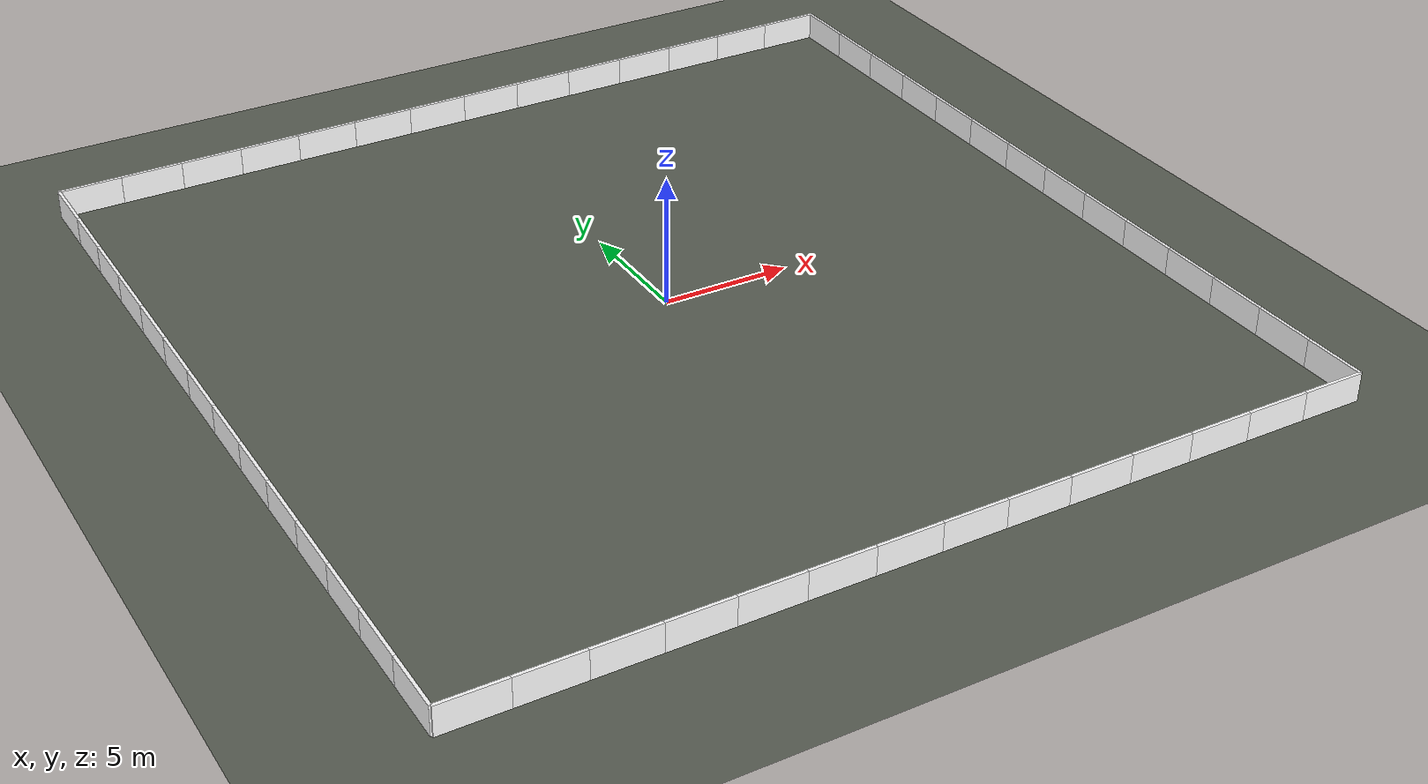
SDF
<sdf version="1.9">
 <world name="park_0">
  <model name="ground_plane">
   <static>true</static>
   <link name="link">
    <collision name="collision">
     <geometry><plane><normal>0 0 1</normal><size>300.000 300.000</size></plane></geometry>
     <surface><friction><ode><mu>1.0</mu><mu2>1.0</mu2></ode></friction></surface>
    </collision>
    <visual name="visual">
     <geometry><plane><normal>0 0 1</normal><size>300.000 300.000</size></plane></geometry>
     <material>
      <ambient>0.350 0.370 0.330 1</ambient>
      <diffuse>0.350 0.370 0.330 1</diffuse>
      <specular>0.08 0.08 0.08 1</specular>
     </material>
    </visual>
   </link>
  </model>
  <model name="fence_3">
   <static>true</static>
   <link name="link">
    <collision name="c0">
     <pose>-15.786 -17.000 0.550 0.0000 0.0000 0.0000</pose>
     <geometry><box><size>2.431 0.120 1.100</size></box></geometry>
    </collision>
    <visual name="v0">
     <pose>-15.786 -17.000 0.550 0.0000 0.0000 0.0000</pose>
     <geometry><box><size>2.431 0.120 1.100</size></box></geometry>
     <material>
      <ambient>1.000 1.000 1.000 1</ambient>
      <diffuse>1.000 1.000 1.000 1</diffuse>
      <specular>0.08 0.08 0.08 1</specular>
      <pbr>
       <metal>
        <albedo_map>model://omnivla_textures/materials/textures/metal.png</albedo_map>
        <roughness>0.85</roughness>
        <metalness>0.0</metalness>
       </metal>
      </pbr>
     </material>
    </visual>
    <collision name="c1">
     <pose>-13.357 -17.000 0.550 0.0000 0.0000 0.0000</pose>
     <geometry><box><size>2.431 0.120 1.100</size></box></geometry>
    </collision>
    <visual name="v1">
     <pose>-13.357 -17.000 0.550 0.0000 0.0000 0.0000</pose>
     <geometry><box><size>2.431 0.120 1.100</size></box></geometry>
     <material>
      <ambient>1.000 1.000 1.000 1</ambient>
      <diffuse>1.000 1.000 1.000 1</diffuse>
      <specular>0.08 0.08 0.08 1</specular>
      <pbr>
       <metal>
        <albedo_map>model://omnivla_textures/materials/textures/metal.png</albedo_map>
        <roughness>0.85</roughness>
        <metalness>0.0</metalness>
       </metal>
      </pbr>
     </material>
    </visual>
    <collision name="c2">
     <pose>-10.929 -17.000 0.550 0.0000 0.0000 0.0000</pose>
     <geometry><box><size>2.431 0.120 1.100</size></box></geometry>
    </collision>
    <visual name="v2">
     <pose>-10.929 -17.000 0.550 0.0000 0.0000 0.0000</pose>
     <geometry><box><size>2.431 0.120 1.100</size></box></geometry>
     <material>
      <ambient>1.000 1.000 1.000 1</ambient>
      <diffuse>1.000 1.000 1.000 1</diffuse>
      <specular>0.08 0.08 0.08 1</specular>
      <pbr>
       <metal>
        <albedo_map>model://omnivla_textures/materials/textures/metal.png</albedo_map>
        <roughness>0.85</roughness>
        <metalness>0.0</metalness>
       </metal>
      </pbr>
     </material>
    </visual>
    <collision name="c3">
     <pose>-8.500 -17.000 0.550 0.0000 0.0000 0.0000</pose>
     <geometry><box><size>2.431 0.120 1.100</size></box></geometry>
    </collision>
    <visual name="v3">
     <pose>-8.500 -17.000 0.550 0.0000 0.0000 0.0000</pose>
     <geometry><box><size>2.431 0.120 1.100</size></box></geometry>
     <material>
      <ambient>1.000 1.000 1.000 1</ambient>
      <diffuse>1.000 1.000 1.000 1</diffuse>
      <specular>0.08 0.08 0.08 1</specular>
      <pbr>
       <metal>
        <albedo_map>model://omnivla_textures/materials/textures/metal.png</albedo_map>
        <roughness>0.85</roughness>
        <metalness>0.0</metalness>
       </metal>
      </pbr>
     </material>
    </visual>
    <collision name="c4">
     <pose>-6.071 -17.000 0.550 0.0000 0.0000 0.0000</pose>
     <geometry><box><size>2.431 0.120 1.100</size></box></geometry>
    </collision>
    <visual name="v4">
     <pose>-6.071 -17.000 0.550 0.0000 0.0000 0.0000</pose>
     <geometry><box><size>2.431 0.120 1.100</size></box></geometry>
     <material>
      <ambient>1.000 1.000 1.000 1</ambient>
      <diffuse>1.000 1.000 1.000 1</diffuse>
      <specular>0.08 0.08 0.08 1</specular>
      <pbr>
       <metal>
        <albedo_map>model://omnivla_textures/materials/textures/metal.png</albedo_map>
        <roughness>0.85</roughness>
        <metalness>0.0</metalness>
       </metal>
      </pbr>
     </material>
    </visual>
    <collision name="c5">
     <pose>-3.643 -17.000 0.550 0.0000 0.0000 0.0000</pose>
     <geometry><box><size>2.431 0.120 1.100</size></box></geometry>
    </collision>
    <visual name="v5">
     <pose>-3.643 -17.000 0.550 0.0000 0.0000 0.0000</pose>
     <geometry><box><size>2.431 0.120 1.100</size></box></geometry>
     <material>
      <ambient>1.000 1.000 1.000 1</ambient>
      <diffuse>1.000 1.000 1.000 1</diffuse>
      <specular>0.08 0.08 0.08 1</specular>
      <pbr>
       <metal>
        <albedo_map>model://omnivla_textures/materials/textures/metal.png</albedo_map>
        <roughness>0.85</roughness>
        <metalness>0.0</metalness>
       </metal>
      </pbr>
     </material>
    </visual>
    <collision name="c6">
     <pose>-1.214 -17.000 0.550 0.0000 0.0000 0.0000</pose>
     <geometry><box><size>2.431 0.120 1.100</size></box></geometry>
    </collision>
    <visual name="v6">
     <pose>-1.214 -17.000 0.550 0.0000 0.0000 0.0000</pose>
     <geometry><box><size>2.431 0.120 1.100</size></box></geometry>
     <material>
      <ambient>1.000 1.000 1.000 1</ambient>
      <diffuse>1.000 1.000 1.000 1</diffuse>
      <specular>0.08 0.08 0.08 1</specular>
      <pbr>
       <metal>
        <albedo_map>model://omnivla_textures/materials/textures/metal.png</albedo_map>
        <roughness>0.85</roughness>
        <metalness>0.0</metalness>
       </metal>
      </pbr>
     </material>
    </visual>
    <collision name="c7">
     <pose>1.214 -17.000 0.550 0.0000 0.0000 0.0000</pose>
     <geometry><box><size>2.431 0.120 1.100</size></box></geometry>
    </collision>
    <visual name="v7">
     <pose>1.214 -17.000 0.550 0.0000 0.0000 0.0000</pose>
     <geometry><box><size>2.431 0.120 1.100</size></box></geometry>
     <material>
      <ambient>1.000 1.000 1.000 1</ambient>
      <diffuse>1.000 1.000 1.000 1</diffuse>
      <specular>0.08 0.08 0.08 1</specular>
      <pbr>
       <metal>
        <albedo_map>model://omnivla_textures/materials/textures/metal.png</albedo_map>
        <roughness>0.85</roughness>
        <metalness>0.0</metalness>
       </metal>
      </pbr>
     </material>
    </visual>
    <collision name="c8">
     <pose>3.643 -17.000 0.550 0.0000 0.0000 0.0000</pose>
     <geometry><box><size>2.431 0.120 1.100</size></box></geometry>
    </collision>
    <visual name="v8">
     <pose>3.643 -17.000 0.550 0.0000 0.0000 0.0000</pose>
     <geometry><box><size>2.431 0.120 1.100</size></box></geometry>
     <material>
      <ambient>1.000 1.000 1.000 1</ambient>
      <diffuse>1.000 1.000 1.000 1</diffuse>
      <specular>0.08 0.08 0.08 1</specular>
      <pbr>
       <metal>
        <albedo_map>model://omnivla_textures/materials/textures/metal.png</albedo_map>
        <roughness>0.85</roughness>
        <metalness>0.0</metalness>
       </metal>
      </pbr>
     </material>
    </visual>
    <collision name="c9">
     <pose>6.071 -17.000 0.550 0.0000 0.0000 0.0000</pose>
     <geometry><box><size>2.431 0.120 1.100</size></box></geometry>
    </collision>
    <visual name="v9">
     <pose>6.071 -17.000 0.550 0.0000 0.0000 0.0000</pose>
     <geometry><box><size>2.431 0.120 1.100</size></box></geometry>
     <material>
      <ambient>1.000 1.000 1.000 1</ambient>
      <diffuse>1.000 1.000 1.000 1</diffuse>
      <specular>0.08 0.08 0.08 1</specular>
      <pbr>
       <metal>
        <albedo_map>model://omnivla_textures/materials/textures/metal.png</albedo_map>
        <roughness>0.85</roughness>
        <metalness>0.0</metalness>
       </metal>
      </pbr>
     </material>
    </visual>
    <collision name="c10">
     <pose>8.500 -17.000 0.550 0.0000 0.0000 0.0000</pose>
     <geometry><box><size>2.431 0.120 1.100</size></box></geometry>
    </collision>
    <visual name="v10">
     <pose>8.500 -17.000 0.550 0.0000 0.0000 0.0000</pose>
     <geometry><box><size>2.431 0.120 1.100</size></box></geometry>
     <material>
      <ambient>1.000 1.000 1.000 1</ambient>
      <diffuse>1.000 1.000 1.000 1</diffuse>
      <specular>0.08 0.08 0.08 1</specular>
      <pbr>
       <metal>
        <albedo_map>model://omnivla_textures/materials/textures/metal.png</albedo_map>
        <roughness>0.85</roughness>
        <metalness>0.0</metalness>
       </metal>
      </pbr>
     </material>
    </visual>
    <collision name="c11">
     <pose>10.929 -17.000 0.550 0.0000 0.0000 0.0000</pose>
     <geometry><box><size>2.431 0.120 1.100</size></box></geometry>
    </collision>
    <visual name="v11">
     <pose>10.929 -17.000 0.550 0.0000 0.0000 0.0000</pose>
     <geometry><box><size>2.431 0.120 1.100</size></box></geometry>
     <material>
      <ambient>1.000 1.000 1.000 1</ambient>
      <diffuse>1.000 1.000 1.000 1</diffuse>
      <specular>0.08 0.08 0.08 1</specular>
      <pbr>
       <metal>
        <albedo_map>model://omnivla_textures/materials/textures/metal.png</albedo_map>
        <roughness>0.85</roughness>
        <metalness>0.0</metalness>
       </metal>
      </pbr>
     </material>
    </visual>
    <collision name="c12">
     <pose>13.357 -17.000 0.550 0.0000 0.0000 0.0000</pose>
     <geometry><box><size>2.431 0.120 1.100</size></box></geometry>
    </collision>
    <visual name="v12">
     <pose>13.357 -17.000 0.550 0.0000 0.0000 0.0000</pose>
     <geometry><box><size>2.431 0.120 1.100</size></box></geometry>
     <material>
      <ambient>1.000 1.000 1.000 1</ambient>
      <diffuse>1.000 1.000 1.000 1</diffuse>
      <specular>0.08 0.08 0.08 1</specular>
      <pbr>
       <metal>
        <albedo_map>model://omnivla_textures/materials/textures/metal.png</albedo_map>
        <roughness>0.85</roughness>
        <metalness>0.0</metalness>
       </metal>
      </pbr>
     </material>
    </visual>
    <collision name="c13">
     <pose>15.786 -17.000 0.550 0.0000 0.0000 0.0000</pose>
     <geometry><box><size>2.431 0.120 1.100</size></box></geometry>
    </collision>
    <visual name="v13">
     <pose>15.786 -17.000 0.550 0.0000 0.0000 0.0000</pose>
     <geometry><box><size>2.431 0.120 1.100</size></box></geometry>
     <material>
      <ambient>1.000 1.000 1.000 1</ambient>
      <diffuse>1.000 1.000 1.000 1</diffuse>
      <specular>0.08 0.08 0.08 1</specular>
      <pbr>
       <metal>
        <albedo_map>model://omnivla_textures/materials/textures/metal.png</albedo_map>
        <roughness>0.85</roughness>
        <metalness>0.0</metalness>
       </metal>
      </pbr>
     </material>
    </visual>
   </link>
  </model>
  <model name="fence_4">
   <static>true</static>
   <link name="link">
    <collision name="c0">
     <pose>17.000 -15.786 0.550 0.0000 0.0000 1.5708</pose>
     <geometry><box><size>2.431 0.120 1.100</size></box></geometry>
    </collision>
    <visual name="v0">
     <pose>17.000 -15.786 0.550 0.0000 0.0000 1.5708</pose>
     <geometry><box><size>2.431 0.120 1.100</size></box></geometry>
     <material>
      <ambient>1.000 1.000 1.000 1</ambient>
      <diffuse>1.000 1.000 1.000 1</diffuse>
      <specular>0.08 0.08 0.08 1</specular>
      <pbr>
       <metal>
        <albedo_map>model://omnivla_textures/materials/textures/metal.png</albedo_map>
        <roughness>0.85</roughness>
        <metalness>0.0</metalness>
       </metal>
      </pbr>
     </material>
    </visual>
    <collision name="c1">
     <pose>17.000 -13.357 0.550 0.0000 0.0000 1.5708</pose>
     <geometry><box><size>2.431 0.120 1.100</size></box></geometry>
    </collision>
    <visual name="v1">
     <pose>17.000 -13.357 0.550 0.0000 0.0000 1.5708</pose>
     <geometry><box><size>2.431 0.120 1.100</size></box></geometry>
     <material>
      <ambient>1.000 1.000 1.000 1</ambient>
      <diffuse>1.000 1.000 1.000 1</diffuse>
      <specular>0.08 0.08 0.08 1</specular>
      <pbr>
       <metal>
        <albedo_map>model://omnivla_textures/materials/textures/metal.png</albedo_map>
        <roughness>0.85</roughness>
        <metalness>0.0</metalness>
       </metal>
      </pbr>
     </material>
    </visual>
    <collision name="c2">
     <pose>17.000 -10.929 0.550 0.0000 0.0000 1.5708</pose>
     <geometry><box><size>2.431 0.120 1.100</size></box></geometry>
    </collision>
    <visual name="v2">
     <pose>17.000 -10.929 0.550 0.0000 0.0000 1.5708</pose>
     <geometry><box><size>2.431 0.120 1.100</size></box></geometry>
     <material>
      <ambient>1.000 1.000 1.000 1</ambient>
      <diffuse>1.000 1.000 1.000 1</diffuse>
      <specular>0.08 0.08 0.08 1</specular>
      <pbr>
       <metal>
        <albedo_map>model://omnivla_textures/materials/textures/metal.png</albedo_map>
        <roughness>0.85</roughness>
        <metalness>0.0</metalness>
       </metal>
      </pbr>
     </material>
    </visual>
    <collision name="c3">
     <pose>17.000 -8.500 0.550 0.0000 0.0000 1.5708</pose>
     <geometry><box><size>2.431 0.120 1.100</size></box></geometry>
    </collision>
    <visual name="v3">
     <pose>17.000 -8.500 0.550 0.0000 0.0000 1.5708</pose>
     <geometry><box><size>2.431 0.120 1.100</size></box></geometry>
     <material>
      <ambient>1.000 1.000 1.000 1</ambient>
      <diffuse>1.000 1.000 1.000 1</diffuse>
      <specular>0.08 0.08 0.08 1</specular>
      <pbr>
       <metal>
        <albedo_map>model://omnivla_textures/materials/textures/metal.png</albedo_map>
        <roughness>0.85</roughness>
        <metalness>0.0</metalness>
       </metal>
      </pbr>
     </material>
    </visual>
    <collision name="c4">
     <pose>17.000 -6.071 0.550 0.0000 0.0000 1.5708</pose>
     <geometry><box><size>2.431 0.120 1.100</size></box></geometry>
    </collision>
    <visual name="v4">
     <pose>17.000 -6.071 0.550 0.0000 0.0000 1.5708</pose>
     <geometry><box><size>2.431 0.120 1.100</size></box></geometry>
     <material>
      <ambient>1.000 1.000 1.000 1</ambient>
      <diffuse>1.000 1.000 1.000 1</diffuse>
      <specular>0.08 0.08 0.08 1</specular>
      <pbr>
       <metal>
        <albedo_map>model://omnivla_textures/materials/textures/metal.png</albedo_map>
        <roughness>0.85</roughness>
        <metalness>0.0</metalness>
       </metal>
      </pbr>
     </material>
    </visual>
    <collision name="c5">
     <pose>17.000 -3.643 0.550 0.0000 0.0000 1.5708</pose>
     <geometry><box><size>2.431 0.120 1.100</size></box></geometry>
    </collision>
    <visual name="v5">
     <pose>17.000 -3.643 0.550 0.0000 0.0000 1.5708</pose>
     <geometry><box><size>2.431 0.120 1.100</size></box></geometry>
     <material>
      <ambient>1.000 1.000 1.000 1</ambient>
      <diffuse>1.000 1.000 1.000 1</diffuse>
      <specular>0.08 0.08 0.08 1</specular>
      <pbr>
       <metal>
        <albedo_map>model://omnivla_textures/materials/textures/metal.png</albedo_map>
        <roughness>0.85</roughness>
        <metalness>0.0</metalness>
       </metal>
      </pbr>
     </material>
    </visual>
    <collision name="c6">
     <pose>17.000 -1.214 0.550 0.0000 0.0000 1.5708</pose>
     <geometry><box><size>2.431 0.120 1.100</size></box></geometry>
    </collision>
    <visual name="v6">
     <pose>17.000 -1.214 0.550 0.0000 0.0000 1.5708</pose>
     <geometry><box><size>2.431 0.120 1.100</size></box></geometry>
     <material>
      <ambient>1.000 1.000 1.000 1</ambient>
      <diffuse>1.000 1.000 1.000 1</diffuse>
      <specular>0.08 0.08 0.08 1</specular>
      <pbr>
       <metal>
        <albedo_map>model://omnivla_textures/materials/textures/metal.png</albedo_map>
        <roughness>0.85</roughness>
        <metalness>0.0</metalness>
       </metal>
      </pbr>
     </material>
    </visual>
    <collision name="c7">
     <pose>17.000 1.214 0.550 0.0000 0.0000 1.5708</pose>
     <geometry><box><size>2.431 0.120 1.100</size></box></geometry>
    </collision>
    <visual name="v7">
     <pose>17.000 1.214 0.550 0.0000 0.0000 1.5708</pose>
     <geometry><box><size>2.431 0.120 1.100</size></box></geometry>
     <material>
      <ambient>1.000 1.000 1.000 1</ambient>
      <diffuse>1.000 1.000 1.000 1</diffuse>
      <specular>0.08 0.08 0.08 1</specular>
      <pbr>
       <metal>
        <albedo_map>model://omnivla_textures/materials/textures/metal.png</albedo_map>
        <roughness>0.85</roughness>
        <metalness>0.0</metalness>
       </metal>
      </pbr>
     </material>
    </visual>
    <collision name="c8">
     <pose>17.000 3.643 0.550 0.0000 0.0000 1.5708</pose>
     <geometry><box><size>2.431 0.120 1.100</size></box></geometry>
    </collision>
    <visual name="v8">
     <pose>17.000 3.643 0.550 0.0000 0.0000 1.5708</pose>
     <geometry><box><size>2.431 0.120 1.100</size></box></geometry>
     <material>
      <ambient>1.000 1.000 1.000 1</ambient>
      <diffuse>1.000 1.000 1.000 1</diffuse>
      <specular>0.08 0.08 0.08 1</specular>
      <pbr>
       <metal>
        <albedo_map>model://omnivla_textures/materials/textures/metal.png</albedo_map>
        <roughness>0.85</roughness>
        <metalness>0.0</metalness>
       </metal>
      </pbr>
     </material>
    </visual>
    <collision name="c9">
     <pose>17.000 6.071 0.550 0.0000 0.0000 1.5708</pose>
     <geometry><box><size>2.431 0.120 1.100</size></box></geometry>
    </collision>
    <visual name="v9">
     <pose>17.000 6.071 0.550 0.0000 0.0000 1.5708</pose>
     <geometry><box><size>2.431 0.120 1.100</size></box></geometry>
     <material>
      <ambient>1.000 1.000 1.000 1</ambient>
      <diffuse>1.000 1.000 1.000 1</diffuse>
      <specular>0.08 0.08 0.08 1</specular>
      <pbr>
       <metal>
        <albedo_map>model://omnivla_textures/materials/textures/metal.png</albedo_map>
        <roughness>0.85</roughness>
        <metalness>0.0</metalness>
       </metal>
      </pbr>
     </material>
    </visual>
    <collision name="c10">
     <pose>17.000 8.500 0.550 0.0000 0.0000 1.5708</pose>
     <geometry><box><size>2.431 0.120 1.100</size></box></geometry>
    </collision>
    <visual name="v10">
     <pose>17.000 8.500 0.550 0.0000 0.0000 1.5708</pose>
     <geometry><box><size>2.431 0.120 1.100</size></box></geometry>
     <material>
      <ambient>1.000 1.000 1.000 1</ambient>
      <diffuse>1.000 1.000 1.000 1</diffuse>
      <specular>0.08 0.08 0.08 1</specular>
      <pbr>
       <metal>
        <albedo_map>model://omnivla_textures/materials/textures/metal.png</albedo_map>
        <roughness>0.85</roughness>
        <metalness>0.0</metalness>
       </metal>
      </pbr>
     </material>
    </visual>
    <collision name="c11">
     <pose>17.000 10.929 0.550 0.0000 0.0000 1.5708</pose>
     <geometry><box><size>2.431 0.120 1.100</size></box></geometry>
    </collision>
    <visual name="v11">
     <pose>17.000 10.929 0.550 0.0000 0.0000 1.5708</pose>
     <geometry><box><size>2.431 0.120 1.100</size></box></geometry>
     <material>
      <ambient>1.000 1.000 1.000 1</ambient>
      <diffuse>1.000 1.000 1.000 1</diffuse>
      <specular>0.08 0.08 0.08 1</specular>
      <pbr>
       <metal>
        <albedo_map>model://omnivla_textures/materials/textures/metal.png</albedo_map>
        <roughness>0.85</roughness>
        <metalness>0.0</metalness>
       </metal>
      </pbr>
     </material>
    </visual>
    <collision name="c12">
     <pose>17.000 13.357 0.550 0.0000 0.0000 1.5708</pose>
     <geometry><box><size>2.431 0.120 1.100</size></box></geometry>
    </collision>
    <visual name="v12">
     <pose>17.000 13.357 0.550 0.0000 0.0000 1.5708</pose>
     <geometry><box><size>2.431 0.120 1.100</size></box></geometry>
     <material>
      <ambient>1.000 1.000 1.000 1</ambient>
      <diffuse>1.000 1.000 1.000 1</diffuse>
      <specular>0.08 0.08 0.08 1</specular>
      <pbr>
       <metal>
        <albedo_map>model://omnivla_textures/materials/textures/metal.png</albedo_map>
        <roughness>0.85</roughness>
        <metalness>0.0</metalness>
       </metal>
      </pbr>
     </material>
    </visual>
    <collision name="c13">
     <pose>17.000 15.786 0.550 0.0000 0.0000 1.5708</pose>
     <geometry><box><size>2.431 0.120 1.100</size></box></geometry>
    </collision>
    <visual name="v13">
     <pose>17.000 15.786 0.550 0.0000 0.0000 1.5708</pose>
     <geometry><box><size>2.431 0.120 1.100</size></box></geometry>
     <material>
      <ambient>1.000 1.000 1.000 1</ambient>
      <diffuse>1.000 1.000 1.000 1</diffuse>
      <specular>0.08 0.08 0.08 1</specular>
      <pbr>
       <metal>
        <albedo_map>model://omnivla_textures/materials/textures/metal.png</albedo_map>
        <roughness>0.85</roughness>
        <metalness>0.0</metalness>
       </metal>
      </pbr>
     </material>
    </visual>
   </link>
  </model>
  <model name="fence_5">
   <static>true</static>
   <link name="link">
    <collision name="c0">
     <pose>15.786 17.000 0.550 0.0000 0.0000 3.1416</pose>
     <geometry><box><size>2.431 0.120 1.100</size></box></geometry>
    </collision>
    <visual name="v0">
     <pose>15.786 17.000 0.550 0.0000 0.0000 3.1416</pose>
     <geometry><box><size>2.431 0.120 1.100</size></box></geometry>
     <material>
      <ambient>1.000 1.000 1.000 1</ambient>
      <diffuse>1.000 1.000 1.000 1</diffuse>
      <specular>0.08 0.08 0.08 1</specular>
      <pbr>
       <metal>
        <albedo_map>model://omnivla_textures/materials/textures/metal.png</albedo_map>
        <roughness>0.85</roughness>
        <metalness>0.0</metalness>
       </metal>
      </pbr>
     </material>
    </visual>
    <collision name="c1">
     <pose>13.357 17.000 0.550 0.0000 0.0000 3.1416</pose>
     <geometry><box><size>2.431 0.120 1.100</size></box></geometry>
    </collision>
    <visual name="v1">
     <pose>13.357 17.000 0.550 0.0000 0.0000 3.1416</pose>
     <geometry><box><size>2.431 0.120 1.100</size></box></geometry>
     <material>
      <ambient>1.000 1.000 1.000 1</ambient>
      <diffuse>1.000 1.000 1.000 1</diffuse>
      <specular>0.08 0.08 0.08 1</specular>
      <pbr>
       <metal>
        <albedo_map>model://omnivla_textures/materials/textures/metal.png</albedo_map>
        <roughness>0.85</roughness>
        <metalness>0.0</metalness>
       </metal>
      </pbr>
     </material>
    </visual>
    <collision name="c2">
     <pose>10.929 17.000 0.550 0.0000 0.0000 3.1416</pose>
     <geometry><box><size>2.431 0.120 1.100</size></box></geometry>
    </collision>
    <visual name="v2">
     <pose>10.929 17.000 0.550 0.0000 0.0000 3.1416</pose>
     <geometry><box><size>2.431 0.120 1.100</size></box></geometry>
     <material>
      <ambient>1.000 1.000 1.000 1</ambient>
      <diffuse>1.000 1.000 1.000 1</diffuse>
      <specular>0.08 0.08 0.08 1</specular>
      <pbr>
       <metal>
        <albedo_map>model://omnivla_textures/materials/textures/metal.png</albedo_map>
        <roughness>0.85</roughness>
        <metalness>0.0</metalness>
       </metal>
      </pbr>
     </material>
    </visual>
    <collision name="c3">
     <pose>8.500 17.000 0.550 0.0000 0.0000 3.1416</pose>
     <geometry><box><size>2.431 0.120 1.100</size></box></geometry>
    </collision>
    <visual name="v3">
     <pose>8.500 17.000 0.550 0.0000 0.0000 3.1416</pose>
     <geometry><box><size>2.431 0.120 1.100</size></box></geometry>
     <material>
      <ambient>1.000 1.000 1.000 1</ambient>
      <diffuse>1.000 1.000 1.000 1</diffuse>
      <specular>0.08 0.08 0.08 1</specular>
      <pbr>
       <metal>
        <albedo_map>model://omnivla_textures/materials/textures/metal.png</albedo_map>
        <roughness>0.85</roughness>
        <metalness>0.0</metalness>
       </metal>
      </pbr>
     </material>
    </visual>
    <collision name="c4">
     <pose>6.071 17.000 0.550 0.0000 0.0000 3.1416</pose>
     <geometry><box><size>2.431 0.120 1.100</size></box></geometry>
    </collision>
    <visual name="v4">
     <pose>6.071 17.000 0.550 0.0000 0.0000 3.1416</pose>
     <geometry><box><size>2.431 0.120 1.100</size></box></geometry>
     <material>
      <ambient>1.000 1.000 1.000 1</ambient>
      <diffuse>1.000 1.000 1.000 1</diffuse>
      <specular>0.08 0.08 0.08 1</specular>
      <pbr>
       <metal>
        <albedo_map>model://omnivla_textures/materials/textures/metal.png</albedo_map>
        <roughness>0.85</roughness>
        <metalness>0.0</metalness>
       </metal>
      </pbr>
     </material>
    </visual>
    <collision name="c5">
     <pose>3.643 17.000 0.550 0.0000 0.0000 3.1416</pose>
     <geometry><box><size>2.431 0.120 1.100</size></box></geometry>
    </collision>
    <visual name="v5">
     <pose>3.643 17.000 0.550 0.0000 0.0000 3.1416</pose>
     <geometry><box><size>2.431 0.120 1.100</size></box></geometry>
     <material>
      <ambient>1.000 1.000 1.000 1</ambient>
      <diffuse>1.000 1.000 1.000 1</diffuse>
      <specular>0.08 0.08 0.08 1</specular>
      <pbr>
       <metal>
        <albedo_map>model://omnivla_textures/materials/textures/metal.png</albedo_map>
        <roughness>0.85</roughness>
        <metalness>0.0</metalness>
       </metal>
      </pbr>
     </material>
    </visual>
    <collision name="c6">
     <pose>1.214 17.000 0.550 0.0000 0.0000 3.1416</pose>
     <geometry><box><size>2.431 0.120 1.100</size></box></geometry>
    </collision>
    <visual name="v6">
     <pose>1.214 17.000 0.550 0.0000 0.0000 3.1416</pose>
     <geometry><box><size>2.431 0.120 1.100</size></box></geometry>
     <material>
      <ambient>1.000 1.000 1.000 1</ambient>
      <diffuse>1.000 1.000 1.000 1</diffuse>
      <specular>0.08 0.08 0.08 1</specular>
      <pbr>
       <metal>
        <albedo_map>model://omnivla_textures/materials/textures/metal.png</albedo_map>
        <roughness>0.85</roughness>
        <metalness>0.0</metalness>
       </metal>
      </pbr>
     </material>
    </visual>
    <collision name="c7">
     <pose>-1.214 17.000 0.550 0.0000 0.0000 3.1416</pose>
     <geometry><box><size>2.431 0.120 1.100</size></box></geometry>
    </collision>
    <visual name="v7">
     <pose>-1.214 17.000 0.550 0.0000 0.0000 3.1416</pose>
     <geometry><box><size>2.431 0.120 1.100</size></box></geometry>
     <material>
      <ambient>1.000 1.000 1.000 1</ambient>
      <diffuse>1.000 1.000 1.000 1</diffuse>
      <specular>0.08 0.08 0.08 1</specular>
      <pbr>
       <metal>
        <albedo_map>model://omnivla_textures/materials/textures/metal.png</albedo_map>
        <roughness>0.85</roughness>
        <metalness>0.0</metalness>
       </metal>
      </pbr>
     </material>
    </visual>
    <collision name="c8">
     <pose>-3.643 17.000 0.550 0.0000 0.0000 3.1416</pose>
     <geometry><box><size>2.431 0.120 1.100</size></box></geometry>
    </collision>
    <visual name="v8">
     <pose>-3.643 17.000 0.550 0.0000 0.0000 3.1416</pose>
     <geometry><box><size>2.431 0.120 1.100</size></box></geometry>
     <material>
      <ambient>1.000 1.000 1.000 1</ambient>
      <diffuse>1.000 1.000 1.000 1</diffuse>
      <specular>0.08 0.08 0.08 1</specular>
      <pbr>
       <metal>
        <albedo_map>model://omnivla_textures/materials/textures/metal.png</albedo_map>
        <roughness>0.85</roughness>
        <metalness>0.0</metalness>
       </metal>
      </pbr>
     </material>
    </visual>
    <collision name="c9">
     <pose>-6.071 17.000 0.550 0.0000 0.0000 3.1416</pose>
     <geometry><box><size>2.431 0.120 1.100</size></box></geometry>
    </collision>
    <visual name="v9">
     <pose>-6.071 17.000 0.550 0.0000 0.0000 3.1416</pose>
     <geometry><box><size>2.431 0.120 1.100</size></box></geometry>
     <material>
      <ambient>1.000 1.000 1.000 1</ambient>
      <diffuse>1.000 1.000 1.000 1</diffuse>
      <specular>0.08 0.08 0.08 1</specular>
      <pbr>
       <metal>
        <albedo_map>model://omnivla_textures/materials/textures/metal.png</albedo_map>
        <roughness>0.85</roughness>
        <metalness>0.0</metalness>
       </metal>
      </pbr>
     </material>
    </visual>
    <collision name="c10">
     <pose>-8.500 17.000 0.550 0.0000 0.0000 3.1416</pose>
     <geometry><box><size>2.431 0.120 1.100</size></box></geometry>
    </collision>
    <visual name="v10">
     <pose>-8.500 17.000 0.550 0.0000 0.0000 3.1416</pose>
     <geometry><box><size>2.431 0.120 1.100</size></box></geometry>
     <material>
      <ambient>1.000 1.000 1.000 1</ambient>
      <diffuse>1.000 1.000 1.000 1</diffuse>
      <specular>0.08 0.08 0.08 1</specular>
      <pbr>
       <metal>
        <albedo_map>model://omnivla_textures/materials/textures/metal.png</albedo_map>
        <roughness>0.85</roughness>
        <metalness>0.0</metalness>
       </metal>
      </pbr>
     </material>
    </visual>
    <collision name="c11">
     <pose>-10.929 17.000 0.550 0.0000 0.0000 3.1416</pose>
     <geometry><box><size>2.431 0.120 1.100</size></box></geometry>
    </collision>
    <visual name="v11">
     <pose>-10.929 17.000 0.550 0.0000 0.0000 3.1416</pose>
     <geometry><box><size>2.431 0.120 1.100</size></box></geometry>
     <material>
      <ambient>1.000 1.000 1.000 1</ambient>
      <diffuse>1.000 1.000 1.000 1</diffuse>
      <specular>0.08 0.08 0.08 1</specular>
      <pbr>
       <metal>
        <albedo_map>model://omnivla_textures/materials/textures/metal.png</albedo_map>
        <roughness>0.85</roughness>
        <metalness>0.0</metalness>
       </metal>
      </pbr>
     </material>
    </visual>
    <collision name="c12">
     <pose>-13.357 17.000 0.550 0.0000 0.0000 3.1416</pose>
     <geometry><box><size>2.431 0.120 1.100</size></box></geometry>
    </collision>
    <visual name="v12">
     <pose>-13.357 17.000 0.550 0.0000 0.0000 3.1416</pose>
     <geometry><box><size>2.431 0.120 1.100</size></box></geometry>
     <material>
      <ambient>1.000 1.000 1.000 1</ambient>
      <diffuse>1.000 1.000 1.000 1</diffuse>
      <specular>0.08 0.08 0.08 1</specular>
      <pbr>
       <metal>
        <albedo_map>model://omnivla_textures/materials/textures/metal.png</albedo_map>
        <roughness>0.85</roughness>
        <metalness>0.0</metalness>
       </metal>
      </pbr>
     </material>
    </visual>
    <collision name="c13">
     <pose>-15.786 17.000 0.550 0.0000 0.0000 3.1416</pose>
     <geometry><box><size>2.431 0.120 1.100</size></box></geometry>
    </collision>
    <visual name="v13">
     <pose>-15.786 17.000 0.550 0.0000 0.0000 3.1416</pose>
     <geometry><box><size>2.431 0.120 1.100</size></box></geometry>
     <material>
      <ambient>1.000 1.000 1.000 1</ambient>
      <diffuse>1.000 1.000 1.000 1</diffuse>
      <specular>0.08 0.08 0.08 1</specular>
      <pbr>
       <metal>
        <albedo_map>model://omnivla_textures/materials/textures/metal.png</albedo_map>
        <roughness>0.85</roughness>
        <metalness>0.0</metalness>
       </metal>
      </pbr>
     </material>
    </visual>
   </link>
  </model>
  <model name="fence_6">
   <static>true</static>
   <link name="link">
    <collision name="c0">
     <pose>-17.000 15.786 0.550 0.0000 0.0000 -1.5708</pose>
     <geometry><box><size>2.431 0.120 1.100</size></box></geometry>
    </collision>
    <visual name="v0">
     <pose>-17.000 15.786 0.550 0.0000 0.0000 -1.5708</pose>
     <geometry><box><size>2.431 0.120 1.100</size></box></geometry>
     <material>
      <ambient>1.000 1.000 1.000 1</ambient>
      <diffuse>1.000 1.000 1.000 1</diffuse>
      <specular>0.08 0.08 0.08 1</specular>
      <pbr>
       <metal>
        <albedo_map>model://omnivla_textures/materials/textures/metal.png</albedo_map>
        <roughness>0.85</roughness>
        <metalness>0.0</metalness>
       </metal>
      </pbr>
     </material>
    </visual>
    <collision name="c1">
     <pose>-17.000 13.357 0.550 0.0000 0.0000 -1.5708</pose>
     <geometry><box><size>2.431 0.120 1.100</size></box></geometry>
    </collision>
    <visual name="v1">
     <pose>-17.000 13.357 0.550 0.0000 0.0000 -1.5708</pose>
     <geometry><box><size>2.431 0.120 1.100</size></box></geometry>
     <material>
      <ambient>1.000 1.000 1.000 1</ambient>
      <diffuse>1.000 1.000 1.000 1</diffuse>
      <specular>0.08 0.08 0.08 1</specular>
      <pbr>
       <metal>
        <albedo_map>model://omnivla_textures/materials/textures/metal.png</albedo_map>
        <roughness>0.85</roughness>
        <metalness>0.0</metalness>
       </metal>
      </pbr>
     </material>
    </visual>
    <collision name="c2">
     <pose>-17.000 10.929 0.550 0.0000 0.0000 -1.5708</pose>
     <geometry><box><size>2.431 0.120 1.100</size></box></geometry>
    </collision>
    <visual name="v2">
     <pose>-17.000 10.929 0.550 0.0000 0.0000 -1.5708</pose>
     <geometry><box><size>2.431 0.120 1.100</size></box></geometry>
     <material>
      <ambient>1.000 1.000 1.000 1</ambient>
      <diffuse>1.000 1.000 1.000 1</diffuse>
      <specular>0.08 0.08 0.08 1</specular>
      <pbr>
       <metal>
        <albedo_map>model://omnivla_textures/materials/textures/metal.png</albedo_map>
        <roughness>0.85</roughness>
        <metalness>0.0</metalness>
       </metal>
      </pbr>
     </material>
    </visual>
    <collision name="c3">
     <pose>-17.000 8.500 0.550 0.0000 0.0000 -1.5708</pose>
     <geometry><box><size>2.431 0.120 1.100</size></box></geometry>
    </collision>
    <visual name="v3">
     <pose>-17.000 8.500 0.550 0.0000 0.0000 -1.5708</pose>
     <geometry><box><size>2.431 0.120 1.100</size></box></geometry>
     <material>
      <ambient>1.000 1.000 1.000 1</ambient>
      <diffuse>1.000 1.000 1.000 1</diffuse>
      <specular>0.08 0.08 0.08 1</specular>
      <pbr>
       <metal>
        <albedo_map>model://omnivla_textures/materials/textures/metal.png</albedo_map>
        <roughness>0.85</roughness>
        <metalness>0.0</metalness>
       </metal>
      </pbr>
     </material>
    </visual>
    <collision name="c4">
     <pose>-17.000 6.071 0.550 0.0000 0.0000 -1.5708</pose>
     <geometry><box><size>2.431 0.120 1.100</size></box></geometry>
    </collision>
    <visual name="v4">
     <pose>-17.000 6.071 0.550 0.0000 0.0000 -1.5708</pose>
     <geometry><box><size>2.431 0.120 1.100</size></box></geometry>
     <material>
      <ambient>1.000 1.000 1.000 1</ambient>
      <diffuse>1.000 1.000 1.000 1</diffuse>
      <specular>0.08 0.08 0.08 1</specular>
      <pbr>
       <metal>
        <albedo_map>model://omnivla_textures/materials/textures/metal.png</albedo_map>
        <roughness>0.85</roughness>
        <metalness>0.0</metalness>
       </metal>
      </pbr>
     </material>
    </visual>
    <collision name="c5">
     <pose>-17.000 3.643 0.550 0.0000 0.0000 -1.5708</pose>
     <geometry><box><size>2.431 0.120 1.100</size></box></geometry>
    </collision>
    <visual name="v5">
     <pose>-17.000 3.643 0.550 0.0000 0.0000 -1.5708</pose>
     <geometry><box><size>2.431 0.120 1.100</size></box></geometry>
     <material>
      <ambient>1.000 1.000 1.000 1</ambient>
      <diffuse>1.000 1.000 1.000 1</diffuse>
      <specular>0.08 0.08 0.08 1</specular>
      <pbr>
       <metal>
        <albedo_map>model://omnivla_textures/materials/textures/metal.png</albedo_map>
        <roughness>0.85</roughness>
        <metalness>0.0</metalness>
       </metal>
      </pbr>
     </material>
    </visual>
    <collision name="c6">
     <pose>-17.000 1.214 0.550 0.0000 0.0000 -1.5708</pose>
     <geometry><box><size>2.431 0.120 1.100</size></box></geometry>
    </collision>
    <visual name="v6">
     <pose>-17.000 1.214 0.550 0.0000 0.0000 -1.5708</pose>
     <geometry><box><size>2.431 0.120 1.100</size></box></geometry>
     <material>
      <ambient>1.000 1.000 1.000 1</ambient>
      <diffuse>1.000 1.000 1.000 1</diffuse>
      <specular>0.08 0.08 0.08 1</specular>
      <pbr>
       <metal>
        <albedo_map>model://omnivla_textures/materials/textures/metal.png</albedo_map>
        <roughness>0.85</roughness>
        <metalness>0.0</metalness>
       </metal>
      </pbr>
     </material>
    </visual>
    <collision name="c7">
     <pose>-17.000 -1.214 0.550 0.0000 0.0000 -1.5708</pose>
     <geometry><box><size>2.431 0.120 1.100</size></box></geometry>
    </collision>
    <visual name="v7">
     <pose>-17.000 -1.214 0.550 0.0000 0.0000 -1.5708</pose>
     <geometry><box><size>2.431 0.120 1.100</size></box></geometry>
     <material>
      <ambient>1.000 1.000 1.000 1</ambient>
      <diffuse>1.000 1.000 1.000 1</diffuse>
      <specular>0.08 0.08 0.08 1</specular>
      <pbr>
       <metal>
        <albedo_map>model://omnivla_textures/materials/textures/metal.png</albedo_map>
        <roughness>0.85</roughness>
        <metalness>0.0</metalness>
       </metal>
      </pbr>
     </material>
    </visual>
    <collision name="c8">
     <pose>-17.000 -3.643 0.550 0.0000 0.0000 -1.5708</pose>
     <geometry><box><size>2.431 0.120 1.100</size></box></geometry>
    </collision>
    <visual name="v8">
     <pose>-17.000 -3.643 0.550 0.0000 0.0000 -1.5708</pose>
     <geometry><box><size>2.431 0.120 1.100</size></box></geometry>
     <material>
      <ambient>1.000 1.000 1.000 1</ambient>
      <diffuse>1.000 1.000 1.000 1</diffuse>
      <specular>0.08 0.08 0.08 1</specular>
      <pbr>
       <metal>
        <albedo_map>model://omnivla_textures/materials/textures/metal.png</albedo_map>
        <roughness>0.85</roughness>
        <metalness>0.0</metalness>
       </metal>
      </pbr>
     </material>
    </visual>
    <collision name="c9">
     <pose>-17.000 -6.071 0.550 0.0000 0.0000 -1.5708</pose>
     <geometry><box><size>2.431 0.120 1.100</size></box></geometry>
    </collision>
    <visual name="v9">
     <pose>-17.000 -6.071 0.550 0.0000 0.0000 -1.5708</pose>
     <geometry><box><size>2.431 0.120 1.100</size></box></geometry>
     <material>
      <ambient>1.000 1.000 1.000 1</ambient>
      <diffuse>1.000 1.000 1.000 1</diffuse>
      <specular>0.08 0.08 0.08 1</specular>
      <pbr>
       <metal>
        <albedo_map>model://omnivla_textures/materials/textures/metal.png</albedo_map>
        <roughness>0.85</roughness>
        <metalness>0.0</metalness>
       </metal>
      </pbr>
     </material>
    </visual>
    <collision name="c10">
     <pose>-17.000 -8.500 0.550 0.0000 0.0000 -1.5708</pose>
     <geometry><box><size>2.431 0.120 1.100</size></box></geometry>
    </collision>
    <visual name="v10">
     <pose>-17.000 -8.500 0.550 0.0000 0.0000 -1.5708</pose>
     <geometry><box><size>2.431 0.120 1.100</size></box></geometry>
     <material>
      <ambient>1.000 1.000 1.000 1</ambient>
      <diffuse>1.000 1.000 1.000 1</diffuse>
      <specular>0.08 0.08 0.08 1</specular>
      <pbr>
       <metal>
        <albedo_map>model://omnivla_textures/materials/textures/metal.png</albedo_map>
        <roughness>0.85</roughness>
        <metalness>0.0</metalness>
       </metal>
      </pbr>
     </material>
    </visual>
    <collision name="c11">
     <pose>-17.000 -10.929 0.550 0.0000 0.0000 -1.5708</pose>
     <geometry><box><size>2.431 0.120 1.100</size></box></geometry>
    </collision>
    <visual name="v11">
     <pose>-17.000 -10.929 0.550 0.0000 0.0000 -1.5708</pose>
     <geometry><box><size>2.431 0.120 1.100</size></box></geometry>
     <material>
      <ambient>1.000 1.000 1.000 1</ambient>
      <diffuse>1.000 1.000 1.000 1</diffuse>
      <specular>0.08 0.08 0.08 1</specular>
      <pbr>
       <metal>
        <albedo_map>model://omnivla_textures/materials/textures/metal.png</albedo_map>
        <roughness>0.85</roughness>
        <metalness>0.0</metalness>
       </metal>
      </pbr>
     </material>
    </visual>
    <collision name="c12">
     <pose>-17.000 -13.357 0.550 0.0000 0.0000 -1.5708</pose>
     <geometry><box><size>2.431 0.120 1.100</size></box></geometry>
    </collision>
    <visual name="v12">
     <pose>-17.000 -13.357 0.550 0.0000 0.0000 -1.5708</pose>
     <geometry><box><size>2.431 0.120 1.100</size></box></geometry>
     <material>
      <ambient>1.000 1.000 1.000 1</ambient>
      <diffuse>1.000 1.000 1.000 1</diffuse>
      <specular>0.08 0.08 0.08 1</specular>
      <pbr>
       <metal>
        <albedo_map>model://omnivla_textures/materials/textures/metal.png</albedo_map>
        <roughness>0.85</roughness>
        <metalness>0.0</metalness>
       </metal>
      </pbr>
     </material>
    </visual>
    <collision name="c13">
     <pose>-17.000 -15.786 0.550 0.0000 0.0000 -1.5708</pose>
     <geometry><box><size>2.431 0.120 1.100</size></box></geometry>
    </collision>
    <visual name="v13">
     <pose>-17.000 -15.786 0.550 0.0000 0.0000 -1.5708</pose>
     <geometry><box><size>2.431 0.120 1.100</size></box></geometry>
     <material>
      <ambient>1.000 1.000 1.000 1</ambient>
      <diffuse>1.000 1.000 1.000 1</diffuse>
      <specular>0.08 0.08 0.08 1</specular>
      <pbr>
       <metal>
        <albedo_map>model://omnivla_textures/materials/textures/metal.png</albedo_map>
        <roughness>0.85</roughness>
        <metalness>0.0</metalness>
       </metal>
      </pbr>
     </material>
    </visual>
   </link>
  </model>
 </world>
</sdf>
